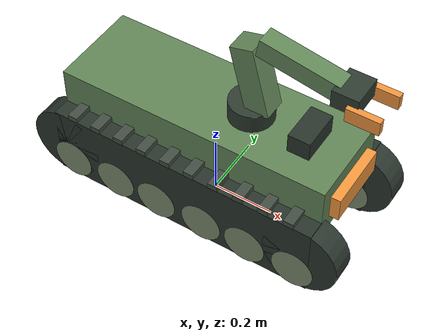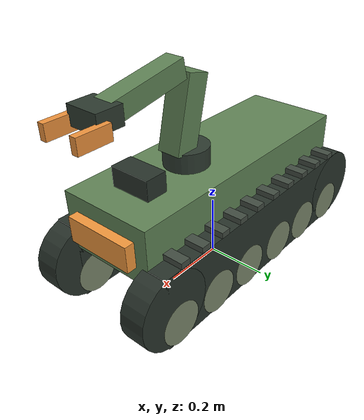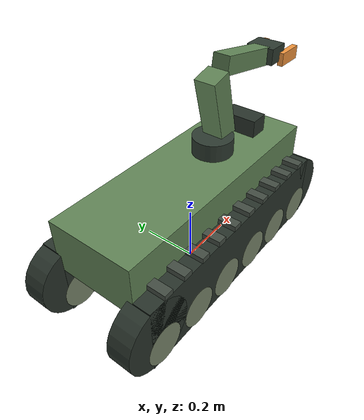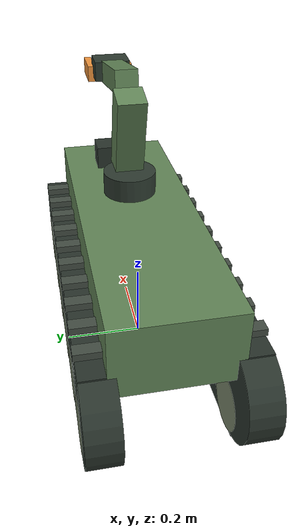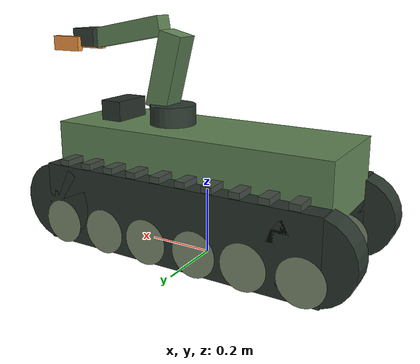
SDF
<?xml version='1.0' encoding='utf-8'?>
<sdf version="1.10">
  <model name="robot">
    <static>false</static>
    <link name="base_link">
      <inertial>
        <mass>32.6</mass>
        <pose>0 0 0.28 0 0 0</pose>
        <inertia>
          <ixx>0.33252</ixx>
          <iyy>2.191806666666667</iyy>
          <izz>2.3482866666666666</izz>
        </inertia>
      </inertial>
      <collision name="body_collision">
        <pose>0 0 0.29 0 0 0</pose>
        <geometry>
          <box>
            <size>0.72 0.25 0.16</size>
          </box>
        </geometry>
        <surface>
          <friction>
            <ode>
              <mu>0.6</mu>
              <mu2>0.6</mu2>
            </ode>
          </friction>
        </surface>
      </collision>
      <visual name="body">
        <pose>0 0 0.3 0 0 0</pose>
        <geometry>
          <box>
            <size>0.88 0.3 0.18</size>
          </box>
        </geometry>
        <material>
          <diffuse>0.38 0.52 0.34 1</diffuse>
        </material>
      </visual>
      <visual name="front_marker">
        <pose>0.45 0 0.3 0 0 0</pose>
        <geometry>
          <box>
            <size>0.04 0.216 0.08</size>
          </box>
        </geometry>
        <material>
          <diffuse>0.96 0.6 0.24 1</diffuse>
        </material>
      </visual>
      <visual name="camera">
        <pose>0.308 0 0.417 0 0 0</pose>
        <geometry>
          <box>
            <size>0.07 0.13 0.07</size>
          </box>
        </geometry>
        <material>
          <diffuse>0.16 0.2 0.17 1</diffuse>
        </material>
      </visual>
      <visual name="left_track_envelope">
        <pose>0 0.17 0.15 0 0 0</pose>
        <geometry>
          <box>
            <size>0.88 0.08 0.24</size>
          </box>
        </geometry>
        <material>
          <diffuse>0.16 0.2 0.17 1</diffuse>
        </material>
      </visual>
      <visual name="left_rear_idler_visual">
        <pose>-0.41 0.17 0.15 1.5707963267948966 0 0</pose>
        <geometry>
          <cylinder>
            <radius>0.12</radius>
            <length>0.08</length>
          </cylinder>
        </geometry>
        <material>
          <diffuse>0.16 0.2 0.17 1</diffuse>
        </material>
      </visual>
      <visual name="left_front_idler_visual">
        <pose>0.41 0.17 0.15 1.5707963267948966 0 0</pose>
        <geometry>
          <cylinder>
            <radius>0.12</radius>
            <length>0.08</length>
          </cylinder>
        </geometry>
        <material>
          <diffuse>0.16 0.2 0.17 1</diffuse>
        </material>
      </visual>
      <visual name="left_tread_0">
        <pose>-0.369 0.17 0.28200000000000003 0 0 0</pose>
        <geometry>
          <box>
            <size>0.032 0.0864 0.018</size>
          </box>
        </geometry>
        <material>
          <diffuse>0.26 0.3 0.26 1</diffuse>
        </material>
      </visual>
      <visual name="left_tread_1">
        <pose>-0.287 0.17 0.28200000000000003 0 0 0</pose>
        <geometry>
          <box>
            <size>0.032 0.0864 0.018</size>
          </box>
        </geometry>
        <material>
          <diffuse>0.26 0.3 0.26 1</diffuse>
        </material>
      </visual>
      <visual name="left_tread_2">
        <pose>-0.205 0.17 0.28200000000000003 0 0 0</pose>
        <geometry>
          <box>
            <size>0.032 0.0864 0.018</size>
          </box>
        </geometry>
        <material>
          <diffuse>0.26 0.3 0.26 1</diffuse>
        </material>
      </visual>
      <visual name="left_tread_3">
        <pose>-0.123 0.17 0.28200000000000003 0 0 0</pose>
        <geometry>
          <box>
            <size>0.032 0.0864 0.018</size>
          </box>
        </geometry>
        <material>
          <diffuse>0.26 0.3 0.26 1</diffuse>
        </material>
      </visual>
      <visual name="left_tread_4">
        <pose>-0.04099999999999998 0.17 0.28200000000000003 0 0 0</pose>
        <geometry>
          <box>
            <size>0.032 0.0864 0.018</size>
          </box>
        </geometry>
        <material>
          <diffuse>0.26 0.3 0.26 1</diffuse>
        </material>
      </visual>
      <visual name="left_tread_5">
        <pose>0.04099999999999998 0.17 0.28200000000000003 0 0 0</pose>
        <geometry>
          <box>
            <size>0.032 0.0864 0.018</size>
          </box>
        </geometry>
        <material>
          <diffuse>0.26 0.3 0.26 1</diffuse>
        </material>
      </visual>
      <visual name="left_tread_6">
        <pose>0.12300000000000005 0.17 0.28200000000000003 0 0 0</pose>
        <geometry>
          <box>
            <size>0.032 0.0864 0.018</size>
          </box>
        </geometry>
        <material>
          <diffuse>0.26 0.3 0.26 1</diffuse>
        </material>
      </visual>
      <visual name="left_tread_7">
        <pose>0.20500000000000002 0.17 0.28200000000000003 0 0 0</pose>
        <geometry>
          <box>
            <size>0.032 0.0864 0.018</size>
          </box>
        </geometry>
        <material>
          <diffuse>0.26 0.3 0.26 1</diffuse>
        </material>
      </visual>
      <visual name="left_tread_8">
        <pose>0.287 0.17 0.28200000000000003 0 0 0</pose>
        <geometry>
          <box>
            <size>0.032 0.0864 0.018</size>
          </box>
        </geometry>
        <material>
          <diffuse>0.26 0.3 0.26 1</diffuse>
        </material>
      </visual>
      <visual name="left_tread_9">
        <pose>0.36899999999999994 0.17 0.28200000000000003 0 0 0</pose>
        <geometry>
          <box>
            <size>0.032 0.0864 0.018</size>
          </box>
        </geometry>
        <material>
          <diffuse>0.26 0.3 0.26 1</diffuse>
        </material>
      </visual>
      <visual name="right_track_envelope">
        <pose>0 -0.17 0.15 0 0 0</pose>
        <geometry>
          <box>
            <size>0.88 0.08 0.24</size>
          </box>
        </geometry>
        <material>
          <diffuse>0.16 0.2 0.17 1</diffuse>
        </material>
      </visual>
      <visual name="right_rear_idler_visual">
        <pose>-0.41 -0.17 0.15 1.5707963267948966 0 0</pose>
        <geometry>
          <cylinder>
            <radius>0.12</radius>
            <length>0.08</length>
          </cylinder>
        </geometry>
        <material>
          <diffuse>0.16 0.2 0.17 1</diffuse>
        </material>
      </visual>
      <visual name="right_front_idler_visual">
        <pose>0.41 -0.17 0.15 1.5707963267948966 0 0</pose>
        <geometry>
          <cylinder>
            <radius>0.12</radius>
            <length>0.08</length>
          </cylinder>
        </geometry>
        <material>
          <diffuse>0.16 0.2 0.17 1</diffuse>
        </material>
      </visual>
      <visual name="right_tread_0">
        <pose>-0.369 -0.17 0.28200000000000003 0 0 0</pose>
        <geometry>
          <box>
            <size>0.032 0.0864 0.018</size>
          </box>
        </geometry>
        <material>
          <diffuse>0.26 0.3 0.26 1</diffuse>
        </material>
      </visual>
      <visual name="right_tread_1">
        <pose>-0.287 -0.17 0.28200000000000003 0 0 0</pose>
        <geometry>
          <box>
            <size>0.032 0.0864 0.018</size>
          </box>
        </geometry>
        <material>
          <diffuse>0.26 0.3 0.26 1</diffuse>
        </material>
      </visual>
      <visual name="right_tread_2">
        <pose>-0.205 -0.17 0.28200000000000003 0 0 0</pose>
        <geometry>
          <box>
            <size>0.032 0.0864 0.018</size>
          </box>
        </geometry>
        <material>
          <diffuse>0.26 0.3 0.26 1</diffuse>
        </material>
      </visual>
      <visual name="right_tread_3">
        <pose>-0.123 -0.17 0.28200000000000003 0 0 0</pose>
        <geometry>
          <box>
            <size>0.032 0.0864 0.018</size>
          </box>
        </geometry>
        <material>
          <diffuse>0.26 0.3 0.26 1</diffuse>
        </material>
      </visual>
      <visual name="right_tread_4">
        <pose>-0.04099999999999998 -0.17 0.28200000000000003 0 0 0</pose>
        <geometry>
          <box>
            <size>0.032 0.0864 0.018</size>
          </box>
        </geometry>
        <material>
          <diffuse>0.26 0.3 0.26 1</diffuse>
        </material>
      </visual>
      <visual name="right_tread_5">
        <pose>0.04099999999999998 -0.17 0.28200000000000003 0 0 0</pose>
        <geometry>
          <box>
            <size>0.032 0.0864 0.018</size>
          </box>
        </geometry>
        <material>
          <diffuse>0.26 0.3 0.26 1</diffuse>
        </material>
      </visual>
      <visual name="right_tread_6">
        <pose>0.12300000000000005 -0.17 0.28200000000000003 0 0 0</pose>
        <geometry>
          <box>
            <size>0.032 0.0864 0.018</size>
          </box>
        </geometry>
        <material>
          <diffuse>0.26 0.3 0.26 1</diffuse>
        </material>
      </visual>
      <visual name="right_tread_7">
        <pose>0.20500000000000002 -0.17 0.28200000000000003 0 0 0</pose>
        <geometry>
          <box>
            <size>0.032 0.0864 0.018</size>
          </box>
        </geometry>
        <material>
          <diffuse>0.26 0.3 0.26 1</diffuse>
        </material>
      </visual>
      <visual name="right_tread_8">
        <pose>0.287 -0.17 0.28200000000000003 0 0 0</pose>
        <geometry>
          <box>
            <size>0.032 0.0864 0.018</size>
          </box>
        </geometry>
        <material>
          <diffuse>0.26 0.3 0.26 1</diffuse>
        </material>
      </visual>
      <visual name="right_tread_9">
        <pose>0.36899999999999994 -0.17 0.28200000000000003 0 0 0</pose>
        <geometry>
          <box>
            <size>0.032 0.0864 0.018</size>
          </box>
        </geometry>
        <material>
          <diffuse>0.26 0.3 0.26 1</diffuse>
        </material>
      </visual>
      <visual name="arm_base_0">
        <pose>0.12 0 0.4 0 0 0</pose>
        <geometry>
          <cylinder>
            <radius>0.07</radius>
            <length>0.1</length>
          </cylinder>
        </geometry>
        <material>
          <diffuse>0.18 0.23 0.19 1</diffuse>
        </material>
      </visual>
      <visual name="upper_arm_0">
        <pose>0.13 0 0.55 0 -0.25 0</pose>
        <geometry>
          <box>
            <size>0.075 0.075 0.23</size>
          </box>
        </geometry>
        <material>
          <diffuse>0.38 0.52 0.34 1</diffuse>
        </material>
      </visual>
      <visual name="forearm_0">
        <pose>0.27 0 0.66 0 0.18 0</pose>
        <geometry>
          <box>
            <size>0.25 0.06 0.06</size>
          </box>
        </geometry>
        <material>
          <diffuse>0.38 0.52 0.34 1</diffuse>
        </material>
      </visual>
      <visual name="wrist_0">
        <pose>0.42 0 0.64 0 0 0</pose>
        <geometry>
          <box>
            <size>0.08 0.1 0.055</size>
          </box>
        </geometry>
        <material>
          <diffuse>0.18 0.23 0.19 1</diffuse>
        </material>
      </visual>
      <visual name="jaw_0_-0.055">
        <pose>0.48 -0.055 0.62 0 0 0</pose>
        <geometry>
          <box>
            <size>0.1 0.02 0.045</size>
          </box>
        </geometry>
        <material>
          <diffuse>0.94 0.58 0.24 1</diffuse>
        </material>
      </visual>
      <visual name="jaw_0_0.055">
        <pose>0.48 0.055 0.62 0 0 0</pose>
        <geometry>
          <box>
            <size>0.1 0.02 0.045</size>
          </box>
        </geometry>
        <material>
          <diffuse>0.94 0.58 0.24 1</diffuse>
        </material>
      </visual>
      <sensor name="imu" type="imu">
        <always_on>true</always_on>
        <update_rate>50</update_rate>
        <topic>/garden/imu</topic>
        <imu />
      </sensor>
    </link>
    <link name="left_carrier_0">
      <pose>-0.39 0.17 0.09 0 0 0</pose>
      <inertial>
        <mass>0.04</mass>
        <pose>0 0 0 0 0 0</pose>
        <inertia>
          <ixx>6e-06</ixx>
          <iyy>6e-06</iyy>
          <izz>6e-06</izz>
        </inertia>
      </inertial>
    </link>
    <joint name="left_suspension_0" type="prismatic">
      <parent>base_link</parent>
      <child>left_carrier_0</child>
      <axis>
        <xyz>0 0 1</xyz>
        <limit>
          <lower>-0.065</lower>
          <upper>0.065</upper>
          <effort>2500</effort>
          <velocity>1.5</velocity>
        </limit>
        <dynamics>
          <damping>115</damping>
          <spring_reference>0</spring_reference>
          <spring_stiffness>5600</spring_stiffness>
        </dynamics>
      </axis>
    </joint>
    <link name="left_wheel">
      <pose>-0.39 0.17 0.09 1.5707963267948966 0 0</pose>
      <inertial>
        <mass>0.85</mass>
        <inertia>
          <ixx>0.00197625</ixx>
          <iyy>0.00197625</iyy>
          <izz>0.0034425</izz>
        </inertia>
      </inertial>
      <collision name="wheel_collision">
        <pose>0 0 0 0 0 0</pose>
        <geometry>
          <cylinder>
            <radius>0.09</radius>
            <length>0.06</length>
          </cylinder>
        </geometry>
        <surface>
          <friction>
            <ode>
              <mu>0.9</mu>
              <mu2>0.9</mu2>
            </ode>
          </friction>
        </surface>
      </collision>
      <visual name="roller">
        <pose>0 0 0 0 0 0</pose>
        <geometry>
          <cylinder>
            <radius>0.0675</radius>
            <length>0.081</length>
          </cylinder>
        </geometry>
        <material>
          <diffuse>0.48 0.53 0.42 1</diffuse>
        </material>
      </visual>
    </link>
    <joint name="left_joint" type="revolute">
      <parent>left_carrier_0</parent>
      <child>left_wheel</child>
      <axis>
        <xyz>0 0 -1</xyz>
        <limit>
          <effort>35.0</effort>
          <velocity>11.0</velocity>
        </limit>
      </axis>
    </joint>
    <link name="left_carrier_1">
      <pose>-0.23 0.17 0.09 0 0 0</pose>
      <inertial>
        <mass>0.04</mass>
        <pose>0 0 0 0 0 0</pose>
        <inertia>
          <ixx>6e-06</ixx>
          <iyy>6e-06</iyy>
          <izz>6e-06</izz>
        </inertia>
      </inertial>
    </link>
    <joint name="left_suspension_1" type="prismatic">
      <parent>base_link</parent>
      <child>left_carrier_1</child>
      <axis>
        <xyz>0 0 1</xyz>
        <limit>
          <lower>-0.065</lower>
          <upper>0.065</upper>
          <effort>2500</effort>
          <velocity>1.5</velocity>
        </limit>
        <dynamics>
          <damping>115</damping>
          <spring_reference>0</spring_reference>
          <spring_stiffness>5600</spring_stiffness>
        </dynamics>
      </axis>
    </joint>
    <link name="left_wheel_1">
      <pose>-0.23 0.17 0.09 1.5707963267948966 0 0</pose>
      <inertial>
        <mass>0.85</mass>
        <inertia>
          <ixx>0.00197625</ixx>
          <iyy>0.00197625</iyy>
          <izz>0.0034425</izz>
        </inertia>
      </inertial>
      <collision name="wheel_collision">
        <pose>0 0 0 0 0 0</pose>
        <geometry>
          <cylinder>
            <radius>0.09</radius>
            <length>0.06</length>
          </cylinder>
        </geometry>
        <surface>
          <friction>
            <ode>
              <mu>0.9</mu>
              <mu2>0.9</mu2>
            </ode>
          </friction>
        </surface>
      </collision>
      <visual name="roller">
        <pose>0 0 0 0 0 0</pose>
        <geometry>
          <cylinder>
            <radius>0.0675</radius>
            <length>0.081</length>
          </cylinder>
        </geometry>
        <material>
          <diffuse>0.48 0.53 0.42 1</diffuse>
        </material>
      </visual>
    </link>
    <joint name="left_joint_1" type="revolute">
      <parent>left_carrier_1</parent>
      <child>left_wheel_1</child>
      <axis>
        <xyz>0 0 -1</xyz>
        <limit>
          <effort>35.0</effort>
          <velocity>11.0</velocity>
        </limit>
      </axis>
    </joint>
    <link name="left_carrier_2">
      <pose>-0.08 0.17 0.09 0 0 0</pose>
      <inertial>
        <mass>0.04</mass>
        <pose>0 0 0 0 0 0</pose>
        <inertia>
          <ixx>6e-06</ixx>
          <iyy>6e-06</iyy>
          <izz>6e-06</izz>
        </inertia>
      </inertial>
    </link>
    <joint name="left_suspension_2" type="prismatic">
      <parent>base_link</parent>
      <child>left_carrier_2</child>
      <axis>
        <xyz>0 0 1</xyz>
        <limit>
          <lower>-0.065</lower>
          <upper>0.065</upper>
          <effort>2500</effort>
          <velocity>1.5</velocity>
        </limit>
        <dynamics>
          <damping>115</damping>
          <spring_reference>0</spring_reference>
          <spring_stiffness>5600</spring_stiffness>
        </dynamics>
      </axis>
    </joint>
    <link name="left_wheel_2">
      <pose>-0.08 0.17 0.09 1.5707963267948966 0 0</pose>
      <inertial>
        <mass>0.85</mass>
        <inertia>
          <ixx>0.00197625</ixx>
          <iyy>0.00197625</iyy>
          <izz>0.0034425</izz>
        </inertia>
      </inertial>
      <collision name="wheel_collision">
        <pose>0 0 0 0 0 0</pose>
        <geometry>
          <cylinder>
            <radius>0.09</radius>
            <length>0.06</length>
          </cylinder>
        </geometry>
        <surface>
          <friction>
            <ode>
              <mu>0.9</mu>
              <mu2>0.9</mu2>
            </ode>
          </friction>
        </surface>
      </collision>
      <visual name="roller">
        <pose>0 0 0 0 0 0</pose>
        <geometry>
          <cylinder>
            <radius>0.0675</radius>
            <length>0.081</length>
          </cylinder>
        </geometry>
        <material>
          <diffuse>0.48 0.53 0.42 1</diffuse>
        </material>
      </visual>
    </link>
    <joint name="left_joint_2" type="revolute">
      <parent>left_carrier_2</parent>
      <child>left_wheel_2</child>
      <axis>
        <xyz>0 0 -1</xyz>
        <limit>
          <effort>35.0</effort>
          <velocity>11.0</velocity>
        </limit>
      </axis>
    </joint>
    <link name="left_carrier_3">
      <pose>0.08 0.17 0.09 0 0 0</pose>
      <inertial>
        <mass>0.04</mass>
        <pose>0 0 0 0 0 0</pose>
        <inertia>
          <ixx>6e-06</ixx>
          <iyy>6e-06</iyy>
          <izz>6e-06</izz>
        </inertia>
      </inertial>
    </link>
    <joint name="left_suspension_3" type="prismatic">
      <parent>base_link</parent>
      <child>left_carrier_3</child>
      <axis>
        <xyz>0 0 1</xyz>
        <limit>
          <lower>-0.065</lower>
          <upper>0.065</upper>
          <effort>2500</effort>
          <velocity>1.5</velocity>
        </limit>
        <dynamics>
          <damping>115</damping>
          <spring_reference>0</spring_reference>
          <spring_stiffness>5600</spring_stiffness>
        </dynamics>
      </axis>
    </joint>
    <link name="left_wheel_3">
      <pose>0.08 0.17 0.09 1.5707963267948966 0 0</pose>
      <inertial>
        <mass>0.85</mass>
        <inertia>
          <ixx>0.00197625</ixx>
          <iyy>0.00197625</iyy>
          <izz>0.0034425</izz>
        </inertia>
      </inertial>
      <collision name="wheel_collision">
        <pose>0 0 0 0 0 0</pose>
        <geometry>
          <cylinder>
            <radius>0.09</radius>
            <length>0.06</length>
          </cylinder>
        </geometry>
        <surface>
          <friction>
            <ode>
              <mu>0.9</mu>
              <mu2>0.9</mu2>
            </ode>
          </friction>
        </surface>
      </collision>
      <visual name="roller">
        <pose>0 0 0 0 0 0</pose>
        <geometry>
          <cylinder>
            <radius>0.0675</radius>
            <length>0.081</length>
          </cylinder>
        </geometry>
        <material>
          <diffuse>0.48 0.53 0.42 1</diffuse>
        </material>
      </visual>
    </link>
    <joint name="left_joint_3" type="revolute">
      <parent>left_carrier_3</parent>
      <child>left_wheel_3</child>
      <axis>
        <xyz>0 0 -1</xyz>
        <limit>
          <effort>35.0</effort>
          <velocity>11.0</velocity>
        </limit>
      </axis>
    </joint>
    <link name="left_carrier_4">
      <pose>0.23 0.17 0.09 0 0 0</pose>
      <inertial>
        <mass>0.04</mass>
        <pose>0 0 0 0 0 0</pose>
        <inertia>
          <ixx>6e-06</ixx>
          <iyy>6e-06</iyy>
          <izz>6e-06</izz>
        </inertia>
      </inertial>
    </link>
    <joint name="left_suspension_4" type="prismatic">
      <parent>base_link</parent>
      <child>left_carrier_4</child>
      <axis>
        <xyz>0 0 1</xyz>
        <limit>
          <lower>-0.065</lower>
          <upper>0.065</upper>
          <effort>2500</effort>
          <velocity>1.5</velocity>
        </limit>
        <dynamics>
          <damping>115</damping>
          <spring_reference>0</spring_reference>
          <spring_stiffness>5600</spring_stiffness>
        </dynamics>
      </axis>
    </joint>
    <link name="left_wheel_4">
      <pose>0.23 0.17 0.09 1.5707963267948966 0 0</pose>
      <inertial>
        <mass>0.85</mass>
        <inertia>
          <ixx>0.00197625</ixx>
          <iyy>0.00197625</iyy>
          <izz>0.0034425</izz>
        </inertia>
      </inertial>
      <collision name="wheel_collision">
        <pose>0 0 0 0 0 0</pose>
        <geometry>
          <cylinder>
            <radius>0.09</radius>
            <length>0.06</length>
          </cylinder>
        </geometry>
        <surface>
          <friction>
            <ode>
              <mu>0.9</mu>
              <mu2>0.9</mu2>
            </ode>
          </friction>
        </surface>
      </collision>
      <visual name="roller">
        <pose>0 0 0 0 0 0</pose>
        <geometry>
          <cylinder>
            <radius>0.0675</radius>
            <length>0.081</length>
          </cylinder>
        </geometry>
        <material>
          <diffuse>0.48 0.53 0.42 1</diffuse>
        </material>
      </visual>
    </link>
    <joint name="left_joint_4" type="revolute">
      <parent>left_carrier_4</parent>
      <child>left_wheel_4</child>
      <axis>
        <xyz>0 0 -1</xyz>
        <limit>
          <effort>35.0</effort>
          <velocity>11.0</velocity>
        </limit>
      </axis>
    </joint>
    <link name="left_carrier_5">
      <pose>0.39 0.17 0.09 0 0 0</pose>
      <inertial>
        <mass>0.04</mass>
        <pose>0 0 0 0 0 0</pose>
        <inertia>
          <ixx>6e-06</ixx>
          <iyy>6e-06</iyy>
          <izz>6e-06</izz>
        </inertia>
      </inertial>
    </link>
    <joint name="left_suspension_5" type="prismatic">
      <parent>base_link</parent>
      <child>left_carrier_5</child>
      <axis>
        <xyz>0 0 1</xyz>
        <limit>
          <lower>-0.065</lower>
          <upper>0.065</upper>
          <effort>2500</effort>
          <velocity>1.5</velocity>
        </limit>
        <dynamics>
          <damping>115</damping>
          <spring_reference>0</spring_reference>
          <spring_stiffness>5600</spring_stiffness>
        </dynamics>
      </axis>
    </joint>
    <link name="left_wheel_5">
      <pose>0.39 0.17 0.09 1.5707963267948966 0 0</pose>
      <inertial>
        <mass>0.85</mass>
        <inertia>
          <ixx>0.00197625</ixx>
          <iyy>0.00197625</iyy>
          <izz>0.0034425</izz>
        </inertia>
      </inertial>
      <collision name="wheel_collision">
        <pose>0 0 0 0 0 0</pose>
        <geometry>
          <cylinder>
            <radius>0.09</radius>
            <length>0.06</length>
          </cylinder>
        </geometry>
        <surface>
          <friction>
            <ode>
              <mu>0.9</mu>
              <mu2>0.9</mu2>
            </ode>
          </friction>
        </surface>
      </collision>
      <visual name="roller">
        <pose>0 0 0 0 0 0</pose>
        <geometry>
          <cylinder>
            <radius>0.0675</radius>
            <length>0.081</length>
          </cylinder>
        </geometry>
        <material>
          <diffuse>0.48 0.53 0.42 1</diffuse>
        </material>
      </visual>
    </link>
    <joint name="left_joint_5" type="revolute">
      <parent>left_carrier_5</parent>
      <child>left_wheel_5</child>
      <axis>
        <xyz>0 0 -1</xyz>
        <limit>
          <effort>35.0</effort>
          <velocity>11.0</velocity>
        </limit>
      </axis>
    </joint>
    <link name="right_carrier_0">
      <pose>-0.39 -0.17 0.09 0 0 0</pose>
      <inertial>
        <mass>0.04</mass>
        <pose>0 0 0 0 0 0</pose>
        <inertia>
          <ixx>6e-06</ixx>
          <iyy>6e-06</iyy>
          <izz>6e-06</izz>
        </inertia>
      </inertial>
    </link>
    <joint name="right_suspension_0" type="prismatic">
      <parent>base_link</parent>
      <child>right_carrier_0</child>
      <axis>
        <xyz>0 0 1</xyz>
        <limit>
          <lower>-0.065</lower>
          <upper>0.065</upper>
          <effort>2500</effort>
          <velocity>1.5</velocity>
        </limit>
        <dynamics>
          <damping>115</damping>
          <spring_reference>0</spring_reference>
          <spring_stiffness>5600</spring_stiffness>
        </dynamics>
      </axis>
    </joint>
    <link name="right_wheel">
      <pose>-0.39 -0.17 0.09 1.5707963267948966 0 0</pose>
      <inertial>
        <mass>0.85</mass>
        <inertia>
          <ixx>0.00197625</ixx>
          <iyy>0.00197625</iyy>
          <izz>0.0034425</izz>
        </inertia>
      </inertial>
      <collision name="wheel_collision">
        <pose>0 0 0 0 0 0</pose>
        <geometry>
          <cylinder>
            <radius>0.09</radius>
            <length>0.06</length>
          </cylinder>
        </geometry>
        <surface>
          <friction>
            <ode>
              <mu>0.9</mu>
              <mu2>0.9</mu2>
            </ode>
          </friction>
        </surface>
      </collision>
      <visual name="roller">
        <pose>0 0 0 0 0 0</pose>
        <geometry>
          <cylinder>
            <radius>0.0675</radius>
            <length>0.081</length>
          </cylinder>
        </geometry>
        <material>
          <diffuse>0.48 0.53 0.42 1</diffuse>
        </material>
      </visual>
    </link>
    <joint name="right_joint" type="revolute">
      <parent>right_carrier_0</parent>
      <child>right_wheel</child>
      <axis>
        <xyz>0 0 -1</xyz>
        <limit>
          <effort>35.0</effort>
          <velocity>11.0</velocity>
        </limit>
      </axis>
    </joint>
    <link name="right_carrier_1">
      <pose>-0.23 -0.17 0.09 0 0 0</pose>
      <inertial>
        <mass>0.04</mass>
        <pose>0 0 0 0 0 0</pose>
        <inertia>
          <ixx>6e-06</ixx>
          <iyy>6e-06</iyy>
          <izz>6e-06</izz>
        </inertia>
      </inertial>
    </link>
    <joint name="right_suspension_1" type="prismatic">
      <parent>base_link</parent>
      <child>right_carrier_1</child>
      <axis>
        <xyz>0 0 1</xyz>
        <limit>
          <lower>-0.065</lower>
          <upper>0.065</upper>
          <effort>2500</effort>
          <velocity>1.5</velocity>
        </limit>
        <dynamics>
          <damping>115</damping>
          <spring_reference>0</spring_reference>
          <spring_stiffness>5600</spring_stiffness>
        </dynamics>
      </axis>
    </joint>
    <link name="right_wheel_1">
      <pose>-0.23 -0.17 0.09 1.5707963267948966 0 0</pose>
      <inertial>
        <mass>0.85</mass>
        <inertia>
          <ixx>0.00197625</ixx>
          <iyy>0.00197625</iyy>
          <izz>0.0034425</izz>
        </inertia>
      </inertial>
      <collision name="wheel_collision">
        <pose>0 0 0 0 0 0</pose>
        <geometry>
          <cylinder>
            <radius>0.09</radius>
            <length>0.06</length>
          </cylinder>
        </geometry>
        <surface>
          <friction>
            <ode>
              <mu>0.9</mu>
              <mu2>0.9</mu2>
            </ode>
          </friction>
        </surface>
      </collision>
      <visual name="roller">
        <pose>0 0 0 0 0 0</pose>
        <geometry>
          <cylinder>
            <radius>0.0675</radius>
            <length>0.081</length>
          </cylinder>
        </geometry>
        <material>
          <diffuse>0.48 0.53 0.42 1</diffuse>
        </material>
      </visual>
    </link>
    <joint name="right_joint_1" type="revolute">
      <parent>right_carrier_1</parent>
      <child>right_wheel_1</child>
      <axis>
        <xyz>0 0 -1</xyz>
        <limit>
          <effort>35.0</effort>
          <velocity>11.0</velocity>
        </limit>
      </axis>
    </joint>
    <link name="right_carrier_2">
      <pose>-0.08 -0.17 0.09 0 0 0</pose>
      <inertial>
        <mass>0.04</mass>
        <pose>0 0 0 0 0 0</pose>
        <inertia>
          <ixx>6e-06</ixx>
          <iyy>6e-06</iyy>
          <izz>6e-06</izz>
        </inertia>
      </inertial>
    </link>
    <joint name="right_suspension_2" type="prismatic">
      <parent>base_link</parent>
      <child>right_carrier_2</child>
      <axis>
        <xyz>0 0 1</xyz>
        <limit>
          <lower>-0.065</lower>
          <upper>0.065</upper>
          <effort>2500</effort>
          <velocity>1.5</velocity>
        </limit>
        <dynamics>
          <damping>115</damping>
          <spring_reference>0</spring_reference>
          <spring_stiffness>5600</spring_stiffness>
        </dynamics>
      </axis>
    </joint>
    <link name="right_wheel_2">
      <pose>-0.08 -0.17 0.09 1.5707963267948966 0 0</pose>
      <inertial>
        <mass>0.85</mass>
        <inertia>
          <ixx>0.00197625</ixx>
          <iyy>0.00197625</iyy>
          <izz>0.0034425</izz>
        </inertia>
      </inertial>
      <collision name="wheel_collision">
        <pose>0 0 0 0 0 0</pose>
        <geometry>
          <cylinder>
            <radius>0.09</radius>
            <length>0.06</length>
          </cylinder>
        </geometry>
        <surface>
          <friction>
            <ode>
              <mu>0.9</mu>
              <mu2>0.9</mu2>
            </ode>
          </friction>
        </surface>
      </collision>
      <visual name="roller">
        <pose>0 0 0 0 0 0</pose>
        <geometry>
          <cylinder>
            <radius>0.0675</radius>
            <length>0.081</length>
          </cylinder>
        </geometry>
        <material>
          <diffuse>0.48 0.53 0.42 1</diffuse>
        </material>
      </visual>
    </link>
    <joint name="right_joint_2" type="revolute">
      <parent>right_carrier_2</parent>
      <child>right_wheel_2</child>
      <axis>
        <xyz>0 0 -1</xyz>
        <limit>
          <effort>35.0</effort>
          <velocity>11.0</velocity>
        </limit>
      </axis>
    </joint>
    <link name="right_carrier_3">
      <pose>0.08 -0.17 0.09 0 0 0</pose>
      <inertial>
        <mass>0.04</mass>
        <pose>0 0 0 0 0 0</pose>
        <inertia>
          <ixx>6e-06</ixx>
          <iyy>6e-06</iyy>
          <izz>6e-06</izz>
        </inertia>
      </inertial>
    </link>
    <joint name="right_suspension_3" type="prismatic">
      <parent>base_link</parent>
      <child>right_carrier_3</child>
      <axis>
        <xyz>0 0 1</xyz>
        <limit>
          <lower>-0.065</lower>
          <upper>0.065</upper>
          <effort>2500</effort>
          <velocity>1.5</velocity>
        </limit>
        <dynamics>
          <damping>115</damping>
          <spring_reference>0</spring_reference>
          <spring_stiffness>5600</spring_stiffness>
        </dynamics>
      </axis>
    </joint>
    <link name="right_wheel_3">
      <pose>0.08 -0.17 0.09 1.5707963267948966 0 0</pose>
      <inertial>
        <mass>0.85</mass>
        <inertia>
          <ixx>0.00197625</ixx>
          <iyy>0.00197625</iyy>
          <izz>0.0034425</izz>
        </inertia>
      </inertial>
      <collision name="wheel_collision">
        <pose>0 0 0 0 0 0</pose>
        <geometry>
          <cylinder>
            <radius>0.09</radius>
            <length>0.06</length>
          </cylinder>
        </geometry>
        <surface>
          <friction>
            <ode>
              <mu>0.9</mu>
              <mu2>0.9</mu2>
            </ode>
          </friction>
        </surface>
      </collision>
      <visual name="roller">
        <pose>0 0 0 0 0 0</pose>
        <geometry>
          <cylinder>
            <radius>0.0675</radius>
            <length>0.081</length>
          </cylinder>
        </geometry>
        <material>
          <diffuse>0.48 0.53 0.42 1</diffuse>
        </material>
      </visual>
    </link>
    <joint name="right_joint_3" type="revolute">
      <parent>right_carrier_3</parent>
      <child>right_wheel_3</child>
      <axis>
        <xyz>0 0 -1</xyz>
        <limit>
          <effort>35.0</effort>
          <velocity>11.0</velocity>
        </limit>
      </axis>
    </joint>
    <link name="right_carrier_4">
      <pose>0.23 -0.17 0.09 0 0 0</pose>
      <inertial>
        <mass>0.04</mass>
        <pose>0 0 0 0 0 0</pose>
        <inertia>
          <ixx>6e-06</ixx>
          <iyy>6e-06</iyy>
          <izz>6e-06</izz>
        </inertia>
      </inertial>
    </link>
    <joint name="right_suspension_4" type="prismatic">
      <parent>base_link</parent>
      <child>right_carrier_4</child>
      <axis>
        <xyz>0 0 1</xyz>
        <limit>
          <lower>-0.065</lower>
          <upper>0.065</upper>
          <effort>2500</effort>
          <velocity>1.5</velocity>
        </limit>
        <dynamics>
          <damping>115</damping>
          <spring_reference>0</spring_reference>
          <spring_stiffness>5600</spring_stiffness>
        </dynamics>
      </axis>
    </joint>
    <link name="right_wheel_4">
      <pose>0.23 -0.17 0.09 1.5707963267948966 0 0</pose>
      <inertial>
        <mass>0.85</mass>
        <inertia>
          <ixx>0.00197625</ixx>
          <iyy>0.00197625</iyy>
          <izz>0.0034425</izz>
        </inertia>
      </inertial>
      <collision name="wheel_collision">
        <pose>0 0 0 0 0 0</pose>
        <geometry>
          <cylinder>
            <radius>0.09</radius>
            <length>0.06</length>
          </cylinder>
        </geometry>
        <surface>
          <friction>
            <ode>
              <mu>0.9</mu>
              <mu2>0.9</mu2>
            </ode>
          </friction>
        </surface>
      </collision>
      <visual name="roller">
        <pose>0 0 0 0 0 0</pose>
        <geometry>
          <cylinder>
            <radius>0.0675</radius>
            <length>0.081</length>
          </cylinder>
        </geometry>
        <material>
          <diffuse>0.48 0.53 0.42 1</diffuse>
        </material>
      </visual>
    </link>
    <joint name="right_joint_4" type="revolute">
      <parent>right_carrier_4</parent>
      <child>right_wheel_4</child>
      <axis>
        <xyz>0 0 -1</xyz>
        <limit>
          <effort>35.0</effort>
          <velocity>11.0</velocity>
        </limit>
      </axis>
    </joint>
    <link name="right_carrier_5">
      <pose>0.39 -0.17 0.09 0 0 0</pose>
      <inertial>
        <mass>0.04</mass>
        <pose>0 0 0 0 0 0</pose>
        <inertia>
          <ixx>6e-06</ixx>
          <iyy>6e-06</iyy>
          <izz>6e-06</izz>
        </inertia>
      </inertial>
    </link>
    <joint name="right_suspension_5" type="prismatic">
      <parent>base_link</parent>
      <child>right_carrier_5</child>
      <axis>
        <xyz>0 0 1</xyz>
        <limit>
          <lower>-0.065</lower>
          <upper>0.065</upper>
          <effort>2500</effort>
          <velocity>1.5</velocity>
        </limit>
        <dynamics>
          <damping>115</damping>
          <spring_reference>0</spring_reference>
          <spring_stiffness>5600</spring_stiffness>
        </dynamics>
      </axis>
    </joint>
    <link name="right_wheel_5">
      <pose>0.39 -0.17 0.09 1.5707963267948966 0 0</pose>
      <inertial>
        <mass>0.85</mass>
        <inertia>
          <ixx>0.00197625</ixx>
          <iyy>0.00197625</iyy>
          <izz>0.0034425</izz>
        </inertia>
      </inertial>
      <collision name="wheel_collision">
        <pose>0 0 0 0 0 0</pose>
        <geometry>
          <cylinder>
            <radius>0.09</radius>
            <length>0.06</length>
          </cylinder>
        </geometry>
        <surface>
          <friction>
            <ode>
              <mu>0.9</mu>
              <mu2>0.9</mu2>
            </ode>
          </friction>
        </surface>
      </collision>
      <visual name="roller">
        <pose>0 0 0 0 0 0</pose>
        <geometry>
          <cylinder>
            <radius>0.0675</radius>
            <length>0.081</length>
          </cylinder>
        </geometry>
        <material>
          <diffuse>0.48 0.53 0.42 1</diffuse>
        </material>
      </visual>
    </link>
    <joint name="right_joint_5" type="revolute">
      <parent>right_carrier_5</parent>
      <child>right_wheel_5</child>
      <axis>
        <xyz>0 0 -1</xyz>
        <limit>
          <effort>35.0</effort>
          <velocity>11.0</velocity>
        </limit>
      </axis>
    </joint>
    <plugin filename="gz-sim-diff-drive-system" name="gz::sim::systems::DiffDrive">
      <left_joint>left_joint</left_joint>
      <left_joint>left_joint_1</left_joint>
      <left_joint>left_joint_2</left_joint>
      <left_joint>left_joint_3</left_joint>
      <left_joint>left_joint_4</left_joint>
      <left_joint>left_joint_5</left_joint>
      <right_joint>right_joint</right_joint>
      <right_joint>right_joint_1</right_joint>
      <right_joint>right_joint_2</right_joint>
      <right_joint>right_joint_3</right_joint>
      <right_joint>right_joint_4</right_joint>
      <right_joint>right_joint_5</right_joint>
      <wheel_separation>0.34</wheel_separation>
      <wheel_radius>0.09</wheel_radius>
      <topic>/garden/cmd_vel</topic>
      <odom_topic>/garden/odom</odom_topic>
      <frame_id>odom</frame_id>
      <child_frame_id>base_link</child_frame_id>
      <odom_publish_frequency>30</odom_publish_frequency>
      <min_linear_velocity>-0.35</min_linear_velocity>
      <max_linear_velocity>0.35</max_linear_velocity>
      <min_angular_velocity>-1.1</min_angular_velocity>
      <max_angular_velocity>1.1</max_angular_velocity>
      <min_linear_acceleration>-0.6</min_linear_acceleration>
      <max_linear_acceleration>0.6</max_linear_acceleration>
      <min_angular_acceleration>-1.5</min_angular_acceleration>
      <max_angular_acceleration>1.5</max_angular_acceleration>
    </plugin>
    <plugin filename="gz-sim-joint-state-publisher-system" name="gz::sim::systems::JointStatePublisher">
      <topic>/garden/joint_states</topic>
      <joint_name>left_joint</joint_name>
      <joint_name>left_joint_1</joint_name>
      <joint_name>left_joint_2</joint_name>
      <joint_name>left_joint_3</joint_name>
      <joint_name>left_joint_4</joint_name>
      <joint_name>left_joint_5</joint_name>
      <joint_name>right_joint</joint_name>
      <joint_name>right_joint_1</joint_name>
      <joint_name>right_joint_2</joint_name>
      <joint_name>right_joint_3</joint_name>
      <joint_name>right_joint_4</joint_name>
      <joint_name>right_joint_5</joint_name>
      <update_rate>100</update_rate>
    </plugin>
    <plugin filename="gz-sim-pose-publisher-system" name="gz::sim::systems::PosePublisher">
      <publish_model_pose>true</publish_model_pose>
      <publish_link_pose>true</publish_link_pose>
      <publish_visual_pose>false</publish_visual_pose>
      <publish_collision_pose>false</publish_collision_pose>
      <publish_sensor_pose>false</publish_sensor_pose>
      <use_pose_vector_msg>true</use_pose_vector_msg>
      <update_frequency>20</update_frequency>
    </plugin>
  </model>
</sdf>
